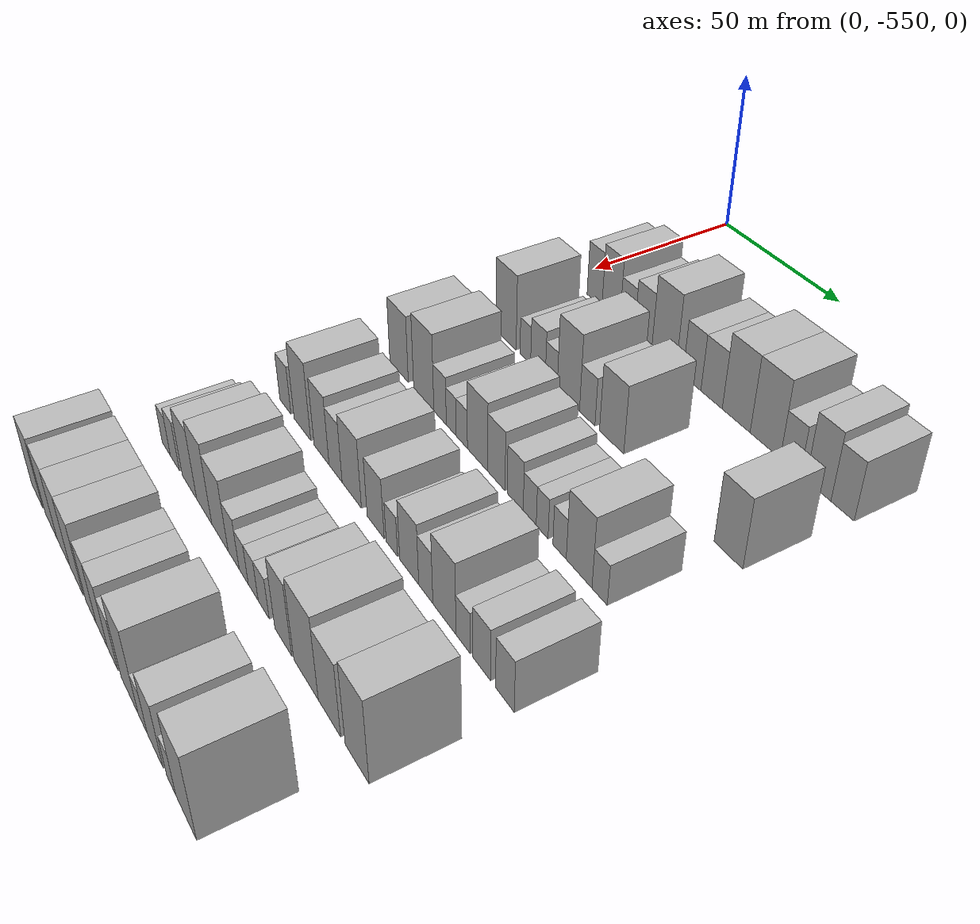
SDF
<sdf version="1.6">
 <world name="default">
  <model name="building_1">
   <static>1</static>
   <pose>50.0000 -536.2582 0 0.000000 0.000000 0.000000</pose>
   <link name="link">
    <pose>0 0 9.00 0 0 0</pose>
    <collision name="collision"><geometry><box><size>20.0000 7.4837 18.0000</size></box></geometry></collision>
    <visual name="visual">
     <cast_shadows>0</cast_shadows>
     <geometry><box><size>20.0000 7.4837 18.0000</size></box></geometry>
     <material>
      <script>
       <uri>model://HANNAS_wall/materials/scripts</uri>
       <uri>model://HANNAS_wall/materials/textures</uri>
       <name>vrc/HANNAS_wall</name>
      </script>
     </material>
    </visual>
   </link>
  </model>
  <model name="building_2">
   <static>1</static>
   <pose>50.0000 -528.1529 0 0.000000 0.000000 0.000000</pose>
   <link name="link">
    <pose>0 0 10.50 0 0 0</pose>
    <collision name="collision"><geometry><box><size>20.0000 8.7269 21.0000</size></box></geometry></collision>
    <visual name="visual">
     <cast_shadows>0</cast_shadows>
     <geometry><box><size>20.0000 8.7269 21.0000</size></box></geometry>
     <material>
      <script>
       <uri>model://HANNAS_wall/materials/scripts</uri>
       <uri>model://HANNAS_wall/materials/textures</uri>
       <name>vrc/HANNAS_wall</name>
      </script>
     </material>
    </visual>
   </link>
  </model>
  <model name="building_3">
   <static>1</static>
   <pose>50.0000 -520.3074 0 0.000000 0.000000 0.000000</pose>
   <link name="link">
    <pose>0 0 7.50 0 0 0</pose>
    <collision name="collision"><geometry><box><size>20.0000 6.9641 15.0000</size></box></geometry></collision>
    <visual name="visual">
     <cast_shadows>0</cast_shadows>
     <geometry><box><size>20.0000 6.9641 15.0000</size></box></geometry>
     <material>
      <script>
       <uri>model://HANNAS_wall/materials/scripts</uri>
       <uri>model://HANNAS_wall/materials/textures</uri>
       <name>vrc/HANNAS_wall</name>
      </script>
     </material>
    </visual>
   </link>
  </model>
  <model name="building_4">
   <static>1</static>
   <pose>50.0000 -512.8381 0 0.000000 0.000000 0.000000</pose>
   <link name="link">
    <pose>0 0 9.00 0 0 0</pose>
    <collision name="collision"><geometry><box><size>20.0000 7.9745 18.0000</size></box></geometry></collision>
    <visual name="visual">
     <cast_shadows>0</cast_shadows>
     <geometry><box><size>20.0000 7.9745 18.0000</size></box></geometry>
     <material>
      <script>
       <uri>model://HANNAS_wall/materials/scripts</uri>
       <uri>model://HANNAS_wall/materials/textures</uri>
       <name>vrc/HANNAS_wall</name>
      </script>
     </material>
    </visual>
   </link>
  </model>
  <model name="building_5">
   <static>1</static>
   <pose>50.0000 -503.4555 0 0.000000 0.000000 0.000000</pose>
   <link name="link">
    <pose>0 0 12.00 0 0 0</pose>
    <collision name="collision"><geometry><box><size>20.0000 10.7908 24.0000</size></box></geometry></collision>
    <visual name="visual">
     <cast_shadows>0</cast_shadows>
     <geometry><box><size>20.0000 10.7908 24.0000</size></box></geometry>
     <material>
      <script>
       <uri>model://HANNAS_wall/materials/scripts</uri>
       <uri>model://HANNAS_wall/materials/textures</uri>
       <name>vrc/HANNAS_wall</name>
      </script>
     </material>
    </visual>
   </link>
  </model>
  <model name="building_6">
   <static>1</static>
   <pose>50.0000 -491.2447 0 0.000000 0.000000 0.000000</pose>
   <link name="link">
    <pose>0 0 9.00 0 0 0</pose>
    <collision name="collision"><geometry><box><size>20.0000 7.6307 18.0000</size></box></geometry></collision>
    <visual name="visual">
     <cast_shadows>0</cast_shadows>
     <geometry><box><size>20.0000 7.6307 18.0000</size></box></geometry>
     <material>
      <script>
       <uri>model://HANNAS_wall/materials/scripts</uri>
       <uri>model://HANNAS_wall/materials/textures</uri>
       <name>vrc/HANNAS_wall</name>
      </script>
     </material>
    </visual>
   </link>
  </model>
  <model name="building_7">
   <static>1</static>
   <pose>50.0000 -483.0584 0 0.000000 0.000000 0.000000</pose>
   <link name="link">
    <pose>0 0 9.00 0 0 0</pose>
    <collision name="collision"><geometry><box><size>20.0000 8.7419 18.0000</size></box></geometry></collision>
    <visual name="visual">
     <cast_shadows>0</cast_shadows>
     <geometry><box><size>20.0000 8.7419 18.0000</size></box></geometry>
     <material>
      <script>
       <uri>model://HANNAS_wall/materials/scripts</uri>
       <uri>model://HANNAS_wall/materials/textures</uri>
       <name>vrc/HANNAS_wall</name>
      </script>
     </material>
    </visual>
   </link>
  </model>
  <model name="building_8">
   <static>1</static>
   <pose>50.0000 -473.2048 0 0.000000 0.000000 0.000000</pose>
   <link name="link">
    <pose>0 0 12.00 0 0 0</pose>
    <collision name="collision"><geometry><box><size>20.0000 10.9654 24.0000</size></box></geometry></collision>
    <visual name="visual">
     <cast_shadows>0</cast_shadows>
     <geometry><box><size>20.0000 10.9654 24.0000</size></box></geometry>
     <material>
      <script>
       <uri>model://HANNAS_wall/materials/scripts</uri>
       <uri>model://HANNAS_wall/materials/textures</uri>
       <name>vrc/HANNAS_wall</name>
      </script>
     </material>
    </visual>
   </link>
  </model>
  <model name="building_9">
   <static>1</static>
   <pose>50.0000 -462.0692 0 0.000000 0.000000 0.000000</pose>
   <link name="link">
    <pose>0 0 12.00 0 0 0</pose>
    <collision name="collision"><geometry><box><size>20.0000 11.3057 24.0000</size></box></geometry></collision>
    <visual name="visual">
     <cast_shadows>0</cast_shadows>
     <geometry><box><size>20.0000 11.3057 24.0000</size></box></geometry>
     <material>
      <script>
       <uri>model://HANNAS_wall/materials/scripts</uri>
       <uri>model://HANNAS_wall/materials/textures</uri>
       <name>vrc/HANNAS_wall</name>
      </script>
     </material>
    </visual>
   </link>
  </model>
  <model name="building_10">
   <static>1</static>
   <pose>50.0000 -452.8031 0 0.000000 0.000000 0.000000</pose>
   <link name="link">
    <pose>0 0 7.50 0 0 0</pose>
    <collision name="collision"><geometry><box><size>20.0000 7.2263 15.0000</size></box></geometry></collision>
    <visual name="visual">
     <cast_shadows>0</cast_shadows>
     <geometry><box><size>20.0000 7.2263 15.0000</size></box></geometry>
     <material>
      <script>
       <uri>model://HANNAS_wall/materials/scripts</uri>
       <uri>model://HANNAS_wall/materials/textures</uri>
       <name>vrc/HANNAS_wall</name>
      </script>
     </material>
    </visual>
   </link>
  </model>
  <model name="building_11">
   <static>1</static>
   <pose>50.0000 -442.8882 0 0.000000 0.000000 0.000000</pose>
   <link name="link">
    <pose>0 0 10.50 0 0 0</pose>
    <collision name="collision"><geometry><box><size>20.0000 8.6036 21.0000</size></box></geometry></collision>
    <visual name="visual">
     <cast_shadows>0</cast_shadows>
     <geometry><box><size>20.0000 8.6036 21.0000</size></box></geometry>
     <material>
      <script>
       <uri>model://HANNAS_wall/materials/scripts</uri>
       <uri>model://HANNAS_wall/materials/textures</uri>
       <name>vrc/HANNAS_wall</name>
      </script>
     </material>
    </visual>
   </link>
  </model>
  <model name="building_12">
   <static>1</static>
   <pose>50.0000 -434.7102 0 0.000000 0.000000 0.000000</pose>
   <link name="link">
    <pose>0 0 9.00 0 0 0</pose>
    <collision name="collision"><geometry><box><size>20.0000 7.7524 18.0000</size></box></geometry></collision>
    <visual name="visual">
     <cast_shadows>0</cast_shadows>
     <geometry><box><size>20.0000 7.7524 18.0000</size></box></geometry>
     <material>
      <script>
       <uri>model://HANNAS_wall/materials/scripts</uri>
       <uri>model://HANNAS_wall/materials/textures</uri>
       <name>vrc/HANNAS_wall</name>
      </script>
     </material>
    </visual>
   </link>
  </model>
  <model name="building_120">
   <static>1</static>
   <pose>82.0000 -532.6504 0 0.000000 0.000000 0.000000</pose>
   <link name="link">
    <pose>0 0 12.00 0 0 0</pose>
    <collision name="collision"><geometry><box><size>20.0000 10.6992 24.0000</size></box></geometry></collision>
    <visual name="visual">
     <cast_shadows>0</cast_shadows>
     <geometry><box><size>20.0000 10.6992 24.0000</size></box></geometry>
     <material>
      <script>
       <uri>model://HANNAS_wall/materials/scripts</uri>
       <uri>model://HANNAS_wall/materials/textures</uri>
       <name>vrc/HANNAS_wall</name>
      </script>
     </material>
    </visual>
   </link>
  </model>
  <model name="building_121">
   <static>1</static>
   <pose>82.0000 -522.6222 0 0.000000 0.000000 0.000000</pose>
   <link name="link">
    <pose>0 0 6.00 0 0 0</pose>
    <collision name="collision"><geometry><box><size>20.0000 5.3572 12.0000</size></box></geometry></collision>
    <visual name="visual">
     <cast_shadows>0</cast_shadows>
     <geometry><box><size>20.0000 5.3572 12.0000</size></box></geometry>
     <material>
      <script>
       <uri>model://HANNAS_wall/materials/scripts</uri>
       <uri>model://HANNAS_wall/materials/textures</uri>
       <name>vrc/HANNAS_wall</name>
      </script>
     </material>
    </visual>
   </link>
  </model>
  <model name="building_122">
   <static>1</static>
   <pose>82.0000 -516.3066 0 0.000000 0.000000 0.000000</pose>
   <link name="link">
    <pose>0 0 7.50 0 0 0</pose>
    <collision name="collision"><geometry><box><size>20.0000 7.2742 15.0000</size></box></geometry></collision>
    <visual name="visual">
     <cast_shadows>0</cast_shadows>
     <geometry><box><size>20.0000 7.2742 15.0000</size></box></geometry>
     <material>
      <script>
       <uri>model://HANNAS_wall/materials/scripts</uri>
       <uri>model://HANNAS_wall/materials/textures</uri>
       <name>vrc/HANNAS_wall</name>
      </script>
     </material>
    </visual>
   </link>
  </model>
  <model name="building_123">
   <static>1</static>
   <pose>82.0000 -509.8130 0 0.000000 0.000000 0.000000</pose>
   <link name="link">
    <pose>0 0 6.00 0 0 0</pose>
    <collision name="collision"><geometry><box><size>20.0000 5.7129 12.0000</size></box></geometry></collision>
    <visual name="visual">
     <cast_shadows>0</cast_shadows>
     <geometry><box><size>20.0000 5.7129 12.0000</size></box></geometry>
     <material>
      <script>
       <uri>model://HANNAS_wall/materials/scripts</uri>
       <uri>model://HANNAS_wall/materials/textures</uri>
       <name>vrc/HANNAS_wall</name>
      </script>
     </material>
    </visual>
   </link>
  </model>
  <model name="building_124">
   <static>1</static>
   <pose>82.0000 -501.7520 0 0.000000 0.000000 0.000000</pose>
   <link name="link">
    <pose>0 0 12.00 0 0 0</pose>
    <collision name="collision"><geometry><box><size>20.0000 10.4091 24.0000</size></box></geometry></collision>
    <visual name="visual">
     <cast_shadows>0</cast_shadows>
     <geometry><box><size>20.0000 10.4091 24.0000</size></box></geometry>
     <material>
      <script>
       <uri>model://HANNAS_wall/materials/scripts</uri>
       <uri>model://HANNAS_wall/materials/textures</uri>
       <name>vrc/HANNAS_wall</name>
      </script>
     </material>
    </visual>
   </link>
  </model>
  <model name="building_125">
   <static>1</static>
   <pose>82.0000 -493.0839 0 0.000000 0.000000 0.000000</pose>
   <link name="link">
    <pose>0 0 7.50 0 0 0</pose>
    <collision name="collision"><geometry><box><size>20.0000 6.9271 15.0000</size></box></geometry></collision>
    <visual name="visual">
     <cast_shadows>0</cast_shadows>
     <geometry><box><size>20.0000 6.9271 15.0000</size></box></geometry>
     <material>
      <script>
       <uri>model://HANNAS_wall/materials/scripts</uri>
       <uri>model://HANNAS_wall/materials/textures</uri>
       <name>vrc/HANNAS_wall</name>
      </script>
     </material>
    </visual>
   </link>
  </model>
  <model name="building_126">
   <static>1</static>
   <pose>82.0000 -482.4094 0 0.000000 0.000000 0.000000</pose>
   <link name="link">
    <pose>0 0 10.50 0 0 0</pose>
    <collision name="collision"><geometry><box><size>20.0000 10.4218 21.0000</size></box></geometry></collision>
    <visual name="visual">
     <cast_shadows>0</cast_shadows>
     <geometry><box><size>20.0000 10.4218 21.0000</size></box></geometry>
     <material>
      <script>
       <uri>model://HANNAS_wall/materials/scripts</uri>
       <uri>model://HANNAS_wall/materials/textures</uri>
       <name>vrc/HANNAS_wall</name>
      </script>
     </material>
    </visual>
   </link>
  </model>
  <model name="building_127">
   <static>1</static>
   <pose>82.0000 -437.0843 0 0.000000 0.000000 0.000000</pose>
   <link name="link">
    <pose>0 0 10.50 0 0 0</pose>
    <collision name="collision"><geometry><box><size>20.0000 10.0761 21.0000</size></box></geometry></collision>
    <visual name="visual">
     <cast_shadows>0</cast_shadows>
     <geometry><box><size>20.0000 10.0761 21.0000</size></box></geometry>
     <material>
      <script>
       <uri>model://HANNAS_wall/materials/scripts</uri>
       <uri>model://HANNAS_wall/materials/textures</uri>
       <name>vrc/HANNAS_wall</name>
      </script>
     </material>
    </visual>
   </link>
  </model>
  <model name="building_243">
   <static>1</static>
   <pose>114.0000 -534.7584 0 0.000000 0.000000 0.000000</pose>
   <link name="link">
    <pose>0 0 10.50 0 0 0</pose>
    <collision name="collision"><geometry><box><size>20.0000 10.4832 21.0000</size></box></geometry></collision>
    <visual name="visual">
     <cast_shadows>0</cast_shadows>
     <geometry><box><size>20.0000 10.4832 21.0000</size></box></geometry>
     <material>
      <script>
       <uri>model://HANNAS_wall/materials/scripts</uri>
       <uri>model://HANNAS_wall/materials/textures</uri>
       <name>vrc/HANNAS_wall</name>
      </script>
     </material>
    </visual>
   </link>
  </model>
  <model name="building_244">
   <static>1</static>
   <pose>114.0000 -521.0586 0 0.000000 0.000000 0.000000</pose>
   <link name="link">
    <pose>0 0 12.00 0 0 0</pose>
    <collision name="collision"><geometry><box><size>20.0000 10.9165 24.0000</size></box></geometry></collision>
    <visual name="visual">
     <cast_shadows>0</cast_shadows>
     <geometry><box><size>20.0000 10.9165 24.0000</size></box></geometry>
     <material>
      <script>
       <uri>model://HANNAS_wall/materials/scripts</uri>
       <uri>model://HANNAS_wall/materials/textures</uri>
       <name>vrc/HANNAS_wall</name>
      </script>
     </material>
    </visual>
   </link>
  </model>
  <model name="building_245">
   <static>1</static>
   <pose>114.0000 -512.3420 0 0.000000 0.000000 0.000000</pose>
   <link name="link">
    <pose>0 0 7.50 0 0 0</pose>
    <collision name="collision"><geometry><box><size>20.0000 6.5166 15.0000</size></box></geometry></collision>
    <visual name="visual">
     <cast_shadows>0</cast_shadows>
     <geometry><box><size>20.0000 6.5166 15.0000</size></box></geometry>
     <material>
      <script>
       <uri>model://HANNAS_wall/materials/scripts</uri>
       <uri>model://HANNAS_wall/materials/textures</uri>
       <name>vrc/HANNAS_wall</name>
      </script>
     </material>
    </visual>
   </link>
  </model>
  <model name="building_246">
   <static>1</static>
   <pose>114.0000 -506.5728 0 0.000000 0.000000 0.000000</pose>
   <link name="link">
    <pose>0 0 6.00 0 0 0</pose>
    <collision name="collision"><geometry><box><size>20.0000 5.0218 12.0000</size></box></geometry></collision>
    <visual name="visual">
     <cast_shadows>0</cast_shadows>
     <geometry><box><size>20.0000 5.0218 12.0000</size></box></geometry>
     <material>
      <script>
       <uri>model://HANNAS_wall/materials/scripts</uri>
       <uri>model://HANNAS_wall/materials/textures</uri>
       <name>vrc/HANNAS_wall</name>
      </script>
     </material>
    </visual>
   </link>
  </model>
  <model name="building_247">
   <static>1</static>
   <pose>114.0000 -501.2593 0 0.000000 0.000000 0.000000</pose>
   <link name="link">
    <pose>0 0 6.00 0 0 0</pose>
    <collision name="collision"><geometry><box><size>20.0000 5.6052 12.0000</size></box></geometry></collision>
    <visual name="visual">
     <cast_shadows>0</cast_shadows>
     <geometry><box><size>20.0000 5.6052 12.0000</size></box></geometry>
     <material>
      <script>
       <uri>model://HANNAS_wall/materials/scripts</uri>
       <uri>model://HANNAS_wall/materials/textures</uri>
       <name>vrc/HANNAS_wall</name>
      </script>
     </material>
    </visual>
   </link>
  </model>
  <model name="building_248">
   <static>1</static>
   <pose>114.0000 -493.5565 0 0.000000 0.000000 0.000000</pose>
   <link name="link">
    <pose>0 0 10.50 0 0 0</pose>
    <collision name="collision"><geometry><box><size>20.0000 9.8004 21.0000</size></box></geometry></collision>
    <visual name="visual">
     <cast_shadows>0</cast_shadows>
     <geometry><box><size>20.0000 9.8004 21.0000</size></box></geometry>
     <material>
      <script>
       <uri>model://HANNAS_wall/materials/scripts</uri>
       <uri>model://HANNAS_wall/materials/textures</uri>
       <name>vrc/HANNAS_wall</name>
      </script>
     </material>
    </visual>
   </link>
  </model>
  <model name="building_249">
   <static>1</static>
   <pose>114.0000 -484.6726 0 0.000000 0.000000 0.000000</pose>
   <link name="link">
    <pose>0 0 9.00 0 0 0</pose>
    <collision name="collision"><geometry><box><size>20.0000 7.9675 18.0000</size></box></geometry></collision>
    <visual name="visual">
     <cast_shadows>0</cast_shadows>
     <geometry><box><size>20.0000 7.9675 18.0000</size></box></geometry>
     <material>
      <script>
       <uri>model://HANNAS_wall/materials/scripts</uri>
       <uri>model://HANNAS_wall/materials/textures</uri>
       <name>vrc/HANNAS_wall</name>
      </script>
     </material>
    </visual>
   </link>
  </model>
  <model name="building_250">
   <static>1</static>
   <pose>114.0000 -476.1221 0 0.000000 0.000000 0.000000</pose>
   <link name="link">
    <pose>0 0 7.50 0 0 0</pose>
    <collision name="collision"><geometry><box><size>20.0000 7.1335 15.0000</size></box></geometry></collision>
    <visual name="visual">
     <cast_shadows>0</cast_shadows>
     <geometry><box><size>20.0000 7.1335 15.0000</size></box></geometry>
     <material>
      <script>
       <uri>model://HANNAS_wall/materials/scripts</uri>
       <uri>model://HANNAS_wall/materials/textures</uri>
       <name>vrc/HANNAS_wall</name>
      </script>
     </material>
    </visual>
   </link>
  </model>
  <model name="building_251">
   <static>1</static>
   <pose>114.0000 -469.7394 0 0.000000 0.000000 0.000000</pose>
   <link name="link">
    <pose>0 0 6.00 0 0 0</pose>
    <collision name="collision"><geometry><box><size>20.0000 5.6320 12.0000</size></box></geometry></collision>
    <visual name="visual">
     <cast_shadows>0</cast_shadows>
     <geometry><box><size>20.0000 5.6320 12.0000</size></box></geometry>
     <material>
      <script>
       <uri>model://HANNAS_wall/materials/scripts</uri>
       <uri>model://HANNAS_wall/materials/textures</uri>
       <name>vrc/HANNAS_wall</name>
      </script>
     </material>
    </visual>
   </link>
  </model>
  <model name="building_252">
   <static>1</static>
   <pose>114.0000 -464.4218 0 0.000000 0.000000 0.000000</pose>
   <link name="link">
    <pose>0 0 6.00 0 0 0</pose>
    <collision name="collision"><geometry><box><size>20.0000 5.0031 12.0000</size></box></geometry></collision>
    <visual name="visual">
     <cast_shadows>0</cast_shadows>
     <geometry><box><size>20.0000 5.0031 12.0000</size></box></geometry>
     <material>
      <script>
       <uri>model://HANNAS_wall/materials/scripts</uri>
       <uri>model://HANNAS_wall/materials/textures</uri>
       <name>vrc/HANNAS_wall</name>
      </script>
     </material>
    </visual>
   </link>
  </model>
  <model name="building_253">
   <static>1</static>
   <pose>114.0000 -457.1871 0 0.000000 0.000000 0.000000</pose>
   <link name="link">
    <pose>0 0 6.00 0 0 0</pose>
    <collision name="collision"><geometry><box><size>20.0000 5.4662 12.0000</size></box></geometry></collision>
    <visual name="visual">
     <cast_shadows>0</cast_shadows>
     <geometry><box><size>20.0000 5.4662 12.0000</size></box></geometry>
     <material>
      <script>
       <uri>model://HANNAS_wall/materials/scripts</uri>
       <uri>model://HANNAS_wall/materials/textures</uri>
       <name>vrc/HANNAS_wall</name>
      </script>
     </material>
    </visual>
   </link>
  </model>
  <model name="building_254">
   <static>1</static>
   <pose>114.0000 -449.3891 0 0.000000 0.000000 0.000000</pose>
   <link name="link">
    <pose>0 0 10.50 0 0 0</pose>
    <collision name="collision"><geometry><box><size>20.0000 10.1298 21.0000</size></box></geometry></collision>
    <visual name="visual">
     <cast_shadows>0</cast_shadows>
     <geometry><box><size>20.0000 10.1298 21.0000</size></box></geometry>
     <material>
      <script>
       <uri>model://HANNAS_wall/materials/scripts</uri>
       <uri>model://HANNAS_wall/materials/textures</uri>
       <name>vrc/HANNAS_wall</name>
      </script>
     </material>
    </visual>
   </link>
  </model>
  <model name="building_255">
   <static>1</static>
   <pose>114.0000 -441.4302 0 0.000000 0.000000 0.000000</pose>
   <link name="link">
    <pose>0 0 6.00 0 0 0</pose>
    <collision name="collision"><geometry><box><size>20.0000 5.7882 12.0000</size></box></geometry></collision>
    <visual name="visual">
     <cast_shadows>0</cast_shadows>
     <geometry><box><size>20.0000 5.7882 12.0000</size></box></geometry>
     <material>
      <script>
       <uri>model://HANNAS_wall/materials/scripts</uri>
       <uri>model://HANNAS_wall/materials/textures</uri>
       <name>vrc/HANNAS_wall</name>
      </script>
     </material>
    </visual>
   </link>
  </model>
  <model name="building_358">
   <static>1</static>
   <pose>146.0000 -536.4902 0 0.000000 0.000000 0.000000</pose>
   <link name="link">
    <pose>0 0 7.50 0 0 0</pose>
    <collision name="collision"><geometry><box><size>20.0000 7.0196 15.0000</size></box></geometry></collision>
    <visual name="visual">
     <cast_shadows>0</cast_shadows>
     <geometry><box><size>20.0000 7.0196 15.0000</size></box></geometry>
     <material>
      <script>
       <uri>model://HANNAS_wall/materials/scripts</uri>
       <uri>model://HANNAS_wall/materials/textures</uri>
       <name>vrc/HANNAS_wall</name>
      </script>
     </material>
    </visual>
   </link>
  </model>
  <model name="building_359">
   <static>1</static>
   <pose>146.0000 -525.9215 0 0.000000 0.000000 0.000000</pose>
   <link name="link">
    <pose>0 0 12.00 0 0 0</pose>
    <collision name="collision"><geometry><box><size>20.0000 10.1177 24.0000</size></box></geometry></collision>
    <visual name="visual">
     <cast_shadows>0</cast_shadows>
     <geometry><box><size>20.0000 10.1177 24.0000</size></box></geometry>
     <material>
      <script>
       <uri>model://HANNAS_wall/materials/scripts</uri>
       <uri>model://HANNAS_wall/materials/textures</uri>
       <name>vrc/HANNAS_wall</name>
      </script>
     </material>
    </visual>
   </link>
  </model>
  <model name="building_360">
   <static>1</static>
   <pose>146.0000 -514.5279 0 0.000000 0.000000 0.000000</pose>
   <link name="link">
    <pose>0 0 10.50 0 0 0</pose>
    <collision name="collision"><geometry><box><size>20.0000 8.6696 21.0000</size></box></geometry></collision>
    <visual name="visual">
     <cast_shadows>0</cast_shadows>
     <geometry><box><size>20.0000 8.6696 21.0000</size></box></geometry>
     <material>
      <script>
       <uri>model://HANNAS_wall/materials/scripts</uri>
       <uri>model://HANNAS_wall/materials/textures</uri>
       <name>vrc/HANNAS_wall</name>
      </script>
     </material>
    </visual>
   </link>
  </model>
  <model name="building_361">
   <static>1</static>
   <pose>146.0000 -506.5495 0 0.000000 0.000000 0.000000</pose>
   <link name="link">
    <pose>0 0 9.00 0 0 0</pose>
    <collision name="collision"><geometry><box><size>20.0000 7.2873 18.0000</size></box></geometry></collision>
    <visual name="visual">
     <cast_shadows>0</cast_shadows>
     <geometry><box><size>20.0000 7.2873 18.0000</size></box></geometry>
     <material>
      <script>
       <uri>model://HANNAS_wall/materials/scripts</uri>
       <uri>model://HANNAS_wall/materials/textures</uri>
       <name>vrc/HANNAS_wall</name>
      </script>
     </material>
    </visual>
   </link>
  </model>
  <model name="building_362">
   <static>1</static>
   <pose>146.0000 -497.7256 0 0.000000 0.000000 0.000000</pose>
   <link name="link">
    <pose>0 0 10.50 0 0 0</pose>
    <collision name="collision"><geometry><box><size>20.0000 10.3605 21.0000</size></box></geometry></collision>
    <visual name="visual">
     <cast_shadows>0</cast_shadows>
     <geometry><box><size>20.0000 10.3605 21.0000</size></box></geometry>
     <material>
      <script>
       <uri>model://HANNAS_wall/materials/scripts</uri>
       <uri>model://HANNAS_wall/materials/textures</uri>
       <name>vrc/HANNAS_wall</name>
      </script>
     </material>
    </visual>
   </link>
  </model>
  <model name="building_363">
   <static>1</static>
   <pose>146.0000 -485.2409 0 0.000000 0.000000 0.000000</pose>
   <link name="link">
    <pose>0 0 9.00 0 0 0</pose>
    <collision name="collision"><geometry><box><size>20.0000 8.6091 18.0000</size></box></geometry></collision>
    <visual name="visual">
     <cast_shadows>0</cast_shadows>
     <geometry><box><size>20.0000 8.6091 18.0000</size></box></geometry>
     <material>
      <script>
       <uri>model://HANNAS_wall/materials/scripts</uri>
       <uri>model://HANNAS_wall/materials/textures</uri>
       <name>vrc/HANNAS_wall</name>
      </script>
     </material>
    </visual>
   </link>
  </model>
  <model name="building_364">
   <static>1</static>
   <pose>146.0000 -477.1224 0 0.000000 0.000000 0.000000</pose>
   <link name="link">
    <pose>0 0 6.00 0 0 0</pose>
    <collision name="collision"><geometry><box><size>20.0000 5.6278 12.0000</size></box></geometry></collision>
    <visual name="visual">
     <cast_shadows>0</cast_shadows>
     <geometry><box><size>20.0000 5.6278 12.0000</size></box></geometry>
     <material>
      <script>
       <uri>model://HANNAS_wall/materials/scripts</uri>
       <uri>model://HANNAS_wall/materials/textures</uri>
       <name>vrc/HANNAS_wall</name>
      </script>
     </material>
    </visual>
   </link>
  </model>
  <model name="building_365">
   <static>1</static>
   <pose>146.0000 -468.8485 0 0.000000 0.000000 0.000000</pose>
   <link name="link">
    <pose>0 0 9.00 0 0 0</pose>
    <collision name="collision"><geometry><box><size>20.0000 8.9199 18.0000</size></box></geometry></collision>
    <visual name="visual">
     <cast_shadows>0</cast_shadows>
     <geometry><box><size>20.0000 8.9199 18.0000</size></box></geometry>
     <material>
      <script>
       <uri>model://HANNAS_wall/materials/scripts</uri>
       <uri>model://HANNAS_wall/materials/textures</uri>
       <name>vrc/HANNAS_wall</name>
      </script>
     </material>
    </visual>
   </link>
  </model>
  <model name="building_366">
   <static>1</static>
   <pose>146.0000 -461.1972 0 0.000000 0.000000 0.000000</pose>
   <link name="link">
    <pose>0 0 7.50 0 0 0</pose>
    <collision name="collision"><geometry><box><size>20.0000 6.3827 15.0000</size></box></geometry></collision>
    <visual name="visual">
     <cast_shadows>0</cast_shadows>
     <geometry><box><size>20.0000 6.3827 15.0000</size></box></geometry>
     <material>
      <script>
       <uri>model://HANNAS_wall/materials/scripts</uri>
       <uri>model://HANNAS_wall/materials/textures</uri>
       <name>vrc/HANNAS_wall</name>
      </script>
     </material>
    </visual>
   </link>
  </model>
  <model name="building_367">
   <static>1</static>
   <pose>146.0000 -452.9749 0 0.000000 0.000000 0.000000</pose>
   <link name="link">
    <pose>0 0 10.50 0 0 0</pose>
    <collision name="collision"><geometry><box><size>20.0000 10.0618 21.0000</size></box></geometry></collision>
    <visual name="visual">
     <cast_shadows>0</cast_shadows>
     <geometry><box><size>20.0000 10.0618 21.0000</size></box></geometry>
     <material>
      <script>
       <uri>model://HANNAS_wall/materials/scripts</uri>
       <uri>model://HANNAS_wall/materials/textures</uri>
       <name>vrc/HANNAS_wall</name>
      </script>
     </material>
    </visual>
   </link>
  </model>
  <model name="building_368">
   <static>1</static>
   <pose>146.0000 -444.9758 0 0.000000 0.000000 0.000000</pose>
   <link name="link">
    <pose>0 0 6.00 0 0 0</pose>
    <collision name="collision"><geometry><box><size>20.0000 5.9365 12.0000</size></box></geometry></collision>
    <visual name="visual">
     <cast_shadows>0</cast_shadows>
     <geometry><box><size>20.0000 5.9365 12.0000</size></box></geometry>
     <material>
      <script>
       <uri>model://HANNAS_wall/materials/scripts</uri>
       <uri>model://HANNAS_wall/materials/textures</uri>
       <name>vrc/HANNAS_wall</name>
      </script>
     </material>
    </visual>
   </link>
  </model>
  <model name="building_369">
   <static>1</static>
   <pose>146.0000 -437.4333 0 0.000000 0.000000 0.000000</pose>
   <link name="link">
    <pose>0 0 7.50 0 0 0</pose>
    <collision name="collision"><geometry><box><size>20.0000 7.1486 15.0000</size></box></geometry></collision>
    <visual name="visual">
     <cast_shadows>0</cast_shadows>
     <geometry><box><size>20.0000 7.1486 15.0000</size></box></geometry>
     <material>
      <script>
       <uri>model://HANNAS_wall/materials/scripts</uri>
       <uri>model://HANNAS_wall/materials/textures</uri>
       <name>vrc/HANNAS_wall</name>
      </script>
     </material>
    </visual>
   </link>
  </model>
  <model name="building_370">
   <static>1</static>
   <pose>146.0000 -428.3000 0 0.000000 0.000000 0.000000</pose>
   <link name="link">
    <pose>0 0 7.50 0 0 0</pose>
    <collision name="collision"><geometry><box><size>20.0000 7.1181 15.0000</size></box></geometry></collision>
    <visual name="visual">
     <cast_shadows>0</cast_shadows>
     <geometry><box><size>20.0000 7.1181 15.0000</size></box></geometry>
     <material>
      <script>
       <uri>model://HANNAS_wall/materials/scripts</uri>
       <uri>model://HANNAS_wall/materials/textures</uri>
       <name>vrc/HANNAS_wall</name>
      </script>
     </material>
    </visual>
   </link>
  </model>
  <model name="building_480">
   <static>1</static>
   <pose>178.0000 -536.0747 0 0.000000 0.000000 0.000000</pose>
   <link name="link">
    <pose>0 0 6.00 0 0 0</pose>
    <collision name="collision"><geometry><box><size>20.0000 5.8505 12.0000</size></box></geometry></collision>
    <visual name="visual">
     <cast_shadows>0</cast_shadows>
     <geometry><box><size>20.0000 5.8505 12.0000</size></box></geometry>
     <material>
      <script>
       <uri>model://HANNAS_wall/materials/scripts</uri>
       <uri>model://HANNAS_wall/materials/textures</uri>
       <name>vrc/HANNAS_wall</name>
      </script>
     </material>
    </visual>
   </link>
  </model>
  <model name="building_481">
   <static>1</static>
   <pose>178.0000 -529.9488 0 0.000000 0.000000 0.000000</pose>
   <link name="link">
    <pose>0 0 7.50 0 0 0</pose>
    <collision name="collision"><geometry><box><size>20.0000 6.4013 15.0000</size></box></geometry></collision>
    <visual name="visual">
     <cast_shadows>0</cast_shadows>
     <geometry><box><size>20.0000 6.4013 15.0000</size></box></geometry>
     <material>
      <script>
       <uri>model://HANNAS_wall/materials/scripts</uri>
       <uri>model://HANNAS_wall/materials/textures</uri>
       <name>vrc/HANNAS_wall</name>
      </script>
     </material>
    </visual>
   </link>
  </model>
  <model name="building_482">
   <static>1</static>
   <pose>178.0000 -519.9103 0 0.000000 0.000000 0.000000</pose>
   <link name="link">
    <pose>0 0 10.50 0 0 0</pose>
    <collision name="collision"><geometry><box><size>20.0000 9.6757 21.0000</size></box></geometry></collision>
    <visual name="visual">
     <cast_shadows>0</cast_shadows>
     <geometry><box><size>20.0000 9.6757 21.0000</size></box></geometry>
     <material>
      <script>
       <uri>model://HANNAS_wall/materials/scripts</uri>
       <uri>model://HANNAS_wall/materials/textures</uri>
       <name>vrc/HANNAS_wall</name>
      </script>
     </material>
    </visual>
   </link>
  </model>
  <model name="building_483">
   <static>1</static>
   <pose>178.0000 -510.1881 0 0.000000 0.000000 0.000000</pose>
   <link name="link">
    <pose>0 0 12.00 0 0 0</pose>
    <collision name="collision"><geometry><box><size>20.0000 9.7687 24.0000</size></box></geometry></collision>
    <visual name="visual">
     <cast_shadows>0</cast_shadows>
     <geometry><box><size>20.0000 9.7687 24.0000</size></box></geometry>
     <material>
      <script>
       <uri>model://HANNAS_wall/materials/scripts</uri>
       <uri>model://HANNAS_wall/materials/textures</uri>
       <name>vrc/HANNAS_wall</name>
      </script>
     </material>
    </visual>
   </link>
  </model>
  <model name="building_484">
   <static>1</static>
   <pose>178.0000 -500.2652 0 0.000000 0.000000 0.000000</pose>
   <link name="link">
    <pose>0 0 10.50 0 0 0</pose>
    <collision name="collision"><geometry><box><size>20.0000 10.0771 21.0000</size></box></geometry></collision>
    <visual name="visual">
     <cast_shadows>0</cast_shadows>
     <geometry><box><size>20.0000 10.0771 21.0000</size></box></geometry>
     <material>
      <script>
       <uri>model://HANNAS_wall/materials/scripts</uri>
       <uri>model://HANNAS_wall/materials/textures</uri>
       <name>vrc/HANNAS_wall</name>
      </script>
     </material>
    </visual>
   </link>
  </model>
  <model name="building_485">
   <static>1</static>
   <pose>178.0000 -491.9369 0 0.000000 0.000000 0.000000</pose>
   <link name="link">
    <pose>0 0 7.50 0 0 0</pose>
    <collision name="collision"><geometry><box><size>20.0000 6.5795 15.0000</size></box></geometry></collision>
    <visual name="visual">
     <cast_shadows>0</cast_shadows>
     <geometry><box><size>20.0000 6.5795 15.0000</size></box></geometry>
     <material>
      <script>
       <uri>model://HANNAS_wall/materials/scripts</uri>
       <uri>model://HANNAS_wall/materials/textures</uri>
       <name>vrc/HANNAS_wall</name>
      </script>
     </material>
    </visual>
   </link>
  </model>
  <model name="building_486">
   <static>1</static>
   <pose>178.0000 -486.0209 0 0.000000 0.000000 0.000000</pose>
   <link name="link">
    <pose>0 0 6.00 0 0 0</pose>
    <collision name="collision"><geometry><box><size>20.0000 5.2524 12.0000</size></box></geometry></collision>
    <visual name="visual">
     <cast_shadows>0</cast_shadows>
     <geometry><box><size>20.0000 5.2524 12.0000</size></box></geometry>
     <material>
      <script>
       <uri>model://HANNAS_wall/materials/scripts</uri>
       <uri>model://HANNAS_wall/materials/textures</uri>
       <name>vrc/HANNAS_wall</name>
      </script>
     </material>
    </visual>
   </link>
  </model>
  <model name="building_487">
   <static>1</static>
   <pose>178.0000 -480.6336 0 0.000000 0.000000 0.000000</pose>
   <link name="link">
    <pose>0 0 6.00 0 0 0</pose>
    <collision name="collision"><geometry><box><size>20.0000 5.5222 12.0000</size></box></geometry></collision>
    <visual name="visual">
     <cast_shadows>0</cast_shadows>
     <geometry><box><size>20.0000 5.5222 12.0000</size></box></geometry>
     <material>
      <script>
       <uri>model://HANNAS_wall/materials/scripts</uri>
       <uri>model://HANNAS_wall/materials/textures</uri>
       <name>vrc/HANNAS_wall</name>
      </script>
     </material>
    </visual>
   </link>
  </model>
  <model name="building_488">
   <static>1</static>
   <pose>178.0000 -474.8799 0 0.000000 0.000000 0.000000</pose>
   <link name="link">
    <pose>0 0 6.00 0 0 0</pose>
    <collision name="collision"><geometry><box><size>20.0000 5.9852 12.0000</size></box></geometry></collision>
    <visual name="visual">
     <cast_shadows>0</cast_shadows>
     <geometry><box><size>20.0000 5.9852 12.0000</size></box></geometry>
     <material>
      <script>
       <uri>model://HANNAS_wall/materials/scripts</uri>
       <uri>model://HANNAS_wall/materials/textures</uri>
       <name>vrc/HANNAS_wall</name>
      </script>
     </material>
    </visual>
   </link>
  </model>
  <model name="building_489">
   <static>1</static>
   <pose>178.0000 -464.5029 0 0.000000 0.000000 0.000000</pose>
   <link name="link">
    <pose>0 0 10.50 0 0 0</pose>
    <collision name="collision"><geometry><box><size>20.0000 8.7688 21.0000</size></box></geometry></collision>
    <visual name="visual">
     <cast_shadows>0</cast_shadows>
     <geometry><box><size>20.0000 8.7688 21.0000</size></box></geometry>
     <material>
      <script>
       <uri>model://HANNAS_wall/materials/scripts</uri>
       <uri>model://HANNAS_wall/materials/textures</uri>
       <name>vrc/HANNAS_wall</name>
      </script>
     </material>
    </visual>
   </link>
  </model>
  <model name="building_490">
   <static>1</static>
   <pose>178.0000 -453.1380 0 0.000000 0.000000 0.000000</pose>
   <link name="link">
    <pose>0 0 12.00 0 0 0</pose>
    <collision name="collision"><geometry><box><size>20.0000 11.9610 24.0000</size></box></geometry></collision>
    <visual name="visual">
     <cast_shadows>0</cast_shadows>
     <geometry><box><size>20.0000 11.9610 24.0000</size></box></geometry>
     <material>
      <script>
       <uri>model://HANNAS_wall/materials/scripts</uri>
       <uri>model://HANNAS_wall/materials/textures</uri>
       <name>vrc/HANNAS_wall</name>
      </script>
     </material>
    </visual>
   </link>
  </model>
  <model name="building_491">
   <static>1</static>
   <pose>178.0000 -442.0163 0 0.000000 0.000000 0.000000</pose>
   <link name="link">
    <pose>0 0 10.50 0 0 0</pose>
    <collision name="collision"><geometry><box><size>20.0000 10.2824 21.0000</size></box></geometry></collision>
    <visual name="visual">
     <cast_shadows>0</cast_shadows>
     <geometry><box><size>20.0000 10.2824 21.0000</size></box></geometry>
     <material>
      <script>
       <uri>model://HANNAS_wall/materials/scripts</uri>
       <uri>model://HANNAS_wall/materials/textures</uri>
       <name>vrc/HANNAS_wall</name>
      </script>
     </material>
    </visual>
   </link>
  </model>
  <model name="building_492">
   <static>1</static>
   <pose>178.0000 -429.7491 0 0.000000 0.000000 0.000000</pose>
   <link name="link">
    <pose>0 0 12.00 0 0 0</pose>
    <collision name="collision"><geometry><box><size>20.0000 10.2519 24.0000</size></box></geometry></collision>
    <visual name="visual">
     <cast_shadows>0</cast_shadows>
     <geometry><box><size>20.0000 10.2519 24.0000</size></box></geometry>
     <material>
      <script>
       <uri>model://HANNAS_wall/materials/scripts</uri>
       <uri>model://HANNAS_wall/materials/textures</uri>
       <name>vrc/HANNAS_wall</name>
      </script>
     </material>
    </visual>
   </link>
  </model>
  <model name="building_595">
   <static>1</static>
   <pose>210.0000 -535.1938 0 0.000000 0.000000 0.000000</pose>
   <link name="link">
    <pose>0 0 10.50 0 0 0</pose>
    <collision name="collision"><geometry><box><size>20.0000 9.6125 21.0000</size></box></geometry></collision>
    <visual name="visual">
     <cast_shadows>0</cast_shadows>
     <geometry><box><size>20.0000 9.6125 21.0000</size></box></geometry>
     <material>
      <script>
       <uri>model://HANNAS_wall/materials/scripts</uri>
       <uri>model://HANNAS_wall/materials/textures</uri>
       <name>vrc/HANNAS_wall</name>
      </script>
     </material>
    </visual>
   </link>
  </model>
  <model name="building_596">
   <static>1</static>
   <pose>210.0000 -523.4965 0 0.000000 0.000000 0.000000</pose>
   <link name="link">
    <pose>0 0 10.50 0 0 0</pose>
    <collision name="collision"><geometry><box><size>20.0000 9.7821 21.0000</size></box></geometry></collision>
    <visual name="visual">
     <cast_shadows>0</cast_shadows>
     <geometry><box><size>20.0000 9.7821 21.0000</size></box></geometry>
     <material>
      <script>
       <uri>model://HANNAS_wall/materials/scripts</uri>
       <uri>model://HANNAS_wall/materials/textures</uri>
       <name>vrc/HANNAS_wall</name>
      </script>
     </material>
    </visual>
   </link>
  </model>
  <model name="building_597">
   <static>1</static>
   <pose>210.0000 -513.5406 0 0.000000 0.000000 0.000000</pose>
   <link name="link">
    <pose>0 0 10.50 0 0 0</pose>
    <collision name="collision"><geometry><box><size>20.0000 10.1298 21.0000</size></box></geometry></collision>
    <visual name="visual">
     <cast_shadows>0</cast_shadows>
     <geometry><box><size>20.0000 10.1298 21.0000</size></box></geometry>
     <material>
      <script>
       <uri>model://HANNAS_wall/materials/scripts</uri>
       <uri>model://HANNAS_wall/materials/textures</uri>
       <name>vrc/HANNAS_wall</name>
      </script>
     </material>
    </visual>
   </link>
  </model>
  <model name="building_598">
   <static>1</static>
   <pose>210.0000 -503.5251 0 0.000000 0.000000 0.000000</pose>
   <link name="link">
    <pose>0 0 10.50 0 0 0</pose>
    <collision name="collision"><geometry><box><size>20.0000 9.9010 21.0000</size></box></geometry></collision>
    <visual name="visual">
     <cast_shadows>0</cast_shadows>
     <geometry><box><size>20.0000 9.9010 21.0000</size></box></geometry>
     <material>
      <script>
       <uri>model://HANNAS_wall/materials/scripts</uri>
       <uri>model://HANNAS_wall/materials/textures</uri>
       <name>vrc/HANNAS_wall</name>
      </script>
     </material>
    </visual>
   </link>
  </model>
  <model name="building_599">
   <static>1</static>
   <pose>210.0000 -492.9084 0 0.000000 0.000000 0.000000</pose>
   <link name="link">
    <pose>0 0 9.00 0 0 0</pose>
    <collision name="collision"><geometry><box><size>20.0000 7.3325 18.0000</size></box></geometry></collision>
    <visual name="visual">
     <cast_shadows>0</cast_shadows>
     <geometry><box><size>20.0000 7.3325 18.0000</size></box></geometry>
     <material>
      <script>
       <uri>model://HANNAS_wall/materials/scripts</uri>
       <uri>model://HANNAS_wall/materials/textures</uri>
       <name>vrc/HANNAS_wall</name>
      </script>
     </material>
    </visual>
   </link>
  </model>
  <model name="building_600">
   <static>1</static>
   <pose>210.0000 -485.3794 0 0.000000 0.000000 0.000000</pose>
   <link name="link">
    <pose>0 0 9.00 0 0 0</pose>
    <collision name="collision"><geometry><box><size>20.0000 7.7255 18.0000</size></box></geometry></collision>
    <visual name="visual">
     <cast_shadows>0</cast_shadows>
     <geometry><box><size>20.0000 7.7255 18.0000</size></box></geometry>
     <material>
      <script>
       <uri>model://HANNAS_wall/materials/scripts</uri>
       <uri>model://HANNAS_wall/materials/textures</uri>
       <name>vrc/HANNAS_wall</name>
      </script>
     </material>
    </visual>
   </link>
  </model>
  <model name="building_601">
   <static>1</static>
   <pose>210.0000 -478.1117 0 0.000000 0.000000 0.000000</pose>
   <link name="link">
    <pose>0 0 7.50 0 0 0</pose>
    <collision name="collision"><geometry><box><size>20.0000 6.8099 15.0000</size></box></geometry></collision>
    <visual name="visual">
     <cast_shadows>0</cast_shadows>
     <geometry><box><size>20.0000 6.8099 15.0000</size></box></geometry>
     <material>
      <script>
       <uri>model://HANNAS_wall/materials/scripts</uri>
       <uri>model://HANNAS_wall/materials/textures</uri>
       <name>vrc/HANNAS_wall</name>
      </script>
     </material>
    </visual>
   </link>
  </model>
  <model name="building_602">
   <static>1</static>
   <pose>210.0000 -467.3610 0 0.000000 0.000000 0.000000</pose>
   <link name="link">
    <pose>0 0 12.00 0 0 0</pose>
    <collision name="collision"><geometry><box><size>20.0000 10.6916 24.0000</size></box></geometry></collision>
    <visual name="visual">
     <cast_shadows>0</cast_shadows>
     <geometry><box><size>20.0000 10.6916 24.0000</size></box></geometry>
     <material>
      <script>
       <uri>model://HANNAS_wall/materials/scripts</uri>
       <uri>model://HANNAS_wall/materials/textures</uri>
       <name>vrc/HANNAS_wall</name>
      </script>
     </material>
    </visual>
   </link>
  </model>
  <model name="building_603">
   <static>1</static>
   <pose>210.0000 -459.2728 0 0.000000 0.000000 0.000000</pose>
   <link name="link">
    <pose>0 0 6.00 0 0 0</pose>
    <collision name="collision"><geometry><box><size>20.0000 5.4848 12.0000</size></box></geometry></collision>
    <visual name="visual">
     <cast_shadows>0</cast_shadows>
     <geometry><box><size>20.0000 5.4848 12.0000</size></box></geometry>
     <material>
      <script>
       <uri>model://HANNAS_wall/materials/scripts</uri>
       <uri>model://HANNAS_wall/materials/textures</uri>
       <name>vrc/HANNAS_wall</name>
      </script>
     </material>
    </visual>
   </link>
  </model>
  <model name="building_604">
   <static>1</static>
   <pose>210.0000 -452.0581 0 0.000000 0.000000 0.000000</pose>
   <link name="link">
    <pose>0 0 9.00 0 0 0</pose>
    <collision name="collision"><geometry><box><size>20.0000 8.9447 18.0000</size></box></geometry></collision>
    <visual name="visual">
     <cast_shadows>0</cast_shadows>
     <geometry><box><size>20.0000 8.9447 18.0000</size></box></geometry>
     <material>
      <script>
       <uri>model://HANNAS_wall/materials/scripts</uri>
       <uri>model://HANNAS_wall/materials/textures</uri>
       <name>vrc/HANNAS_wall</name>
      </script>
     </material>
    </visual>
   </link>
  </model>
  <model name="building_605">
   <static>1</static>
   <pose>210.0000 -443.0884 0 0.000000 0.000000 0.000000</pose>
   <link name="link">
    <pose>0 0 6.00 0 0 0</pose>
    <collision name="collision"><geometry><box><size>20.0000 4.9946 12.0000</size></box></geometry></collision>
    <visual name="visual">
     <cast_shadows>0</cast_shadows>
     <geometry><box><size>20.0000 4.9946 12.0000</size></box></geometry>
     <material>
      <script>
       <uri>model://HANNAS_wall/materials/scripts</uri>
       <uri>model://HANNAS_wall/materials/textures</uri>
       <name>vrc/HANNAS_wall</name>
      </script>
     </material>
    </visual>
   </link>
  </model>
  <model name="building_606">
   <static>1</static>
   <pose>210.0000 -435.1936 0 0.000000 0.000000 0.000000</pose>
   <link name="link">
    <pose>0 0 12.00 0 0 0</pose>
    <collision name="collision"><geometry><box><size>20.0000 10.7951 24.0000</size></box></geometry></collision>
    <visual name="visual">
     <cast_shadows>0</cast_shadows>
     <geometry><box><size>20.0000 10.7951 24.0000</size></box></geometry>
     <material>
      <script>
       <uri>model://HANNAS_wall/materials/scripts</uri>
       <uri>model://HANNAS_wall/materials/textures</uri>
       <name>vrc/HANNAS_wall</name>
      </script>
     </material>
    </visual>
   </link>
  </model>
 </world>
</sdf>
